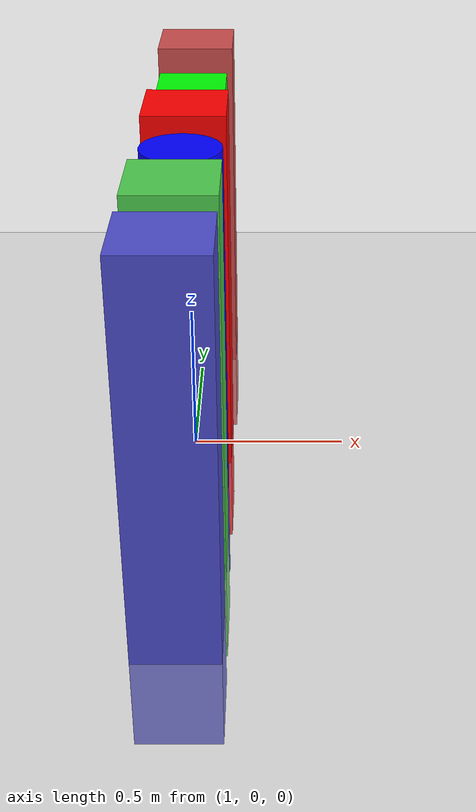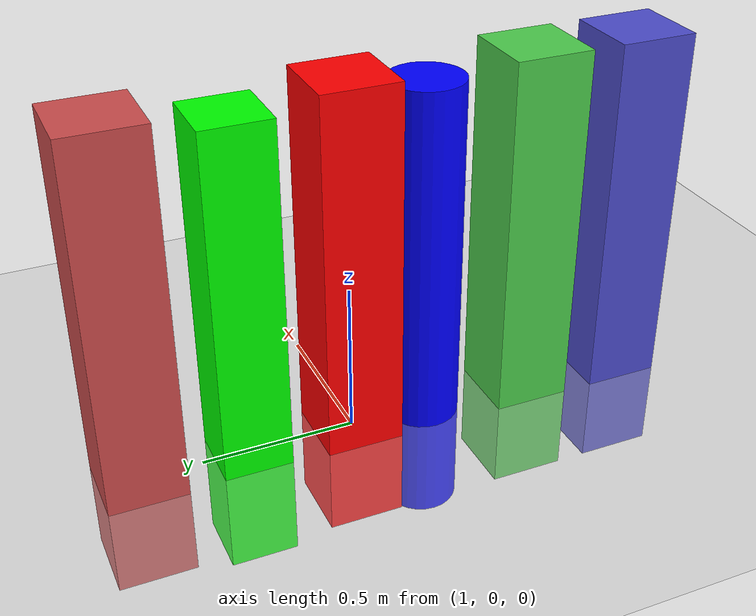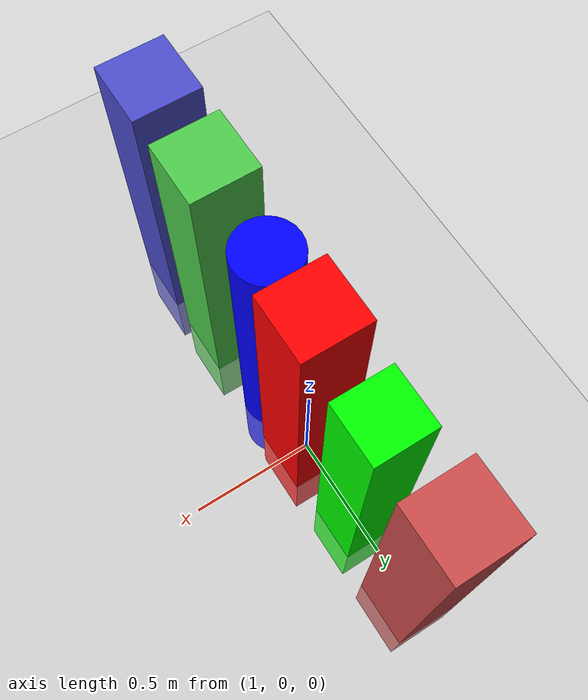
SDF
<?xml version="1.0" ?>
<sdf version="1.9">
  <world name="octomap_demo_world">

    <!-- Physics System -->
    <plugin
      filename="gz-sim-physics-system"
      name="gz::sim::systems::Physics">
    </plugin>

    <!-- User Commands (for GUI interaction) -->
    <plugin
      filename="gz-sim-user-commands-system"
      name="gz::sim::systems::UserCommands">
    </plugin>

    <!-- Scene Broadcaster (publishes scene state) -->
    <plugin
      filename="gz-sim-scene-broadcaster-system"
      name="gz::sim::systems::SceneBroadcaster">
    </plugin>

    <!-- Sensors System -->
    <plugin
      filename="gz-sim-sensors-system"
      name="gz::sim::systems::Sensors">
      <render_engine>ogre2</render_engine>
    </plugin>

    <!-- Gravity - zero for robot arm manipulation -->
    <gravity>0 0 0</gravity>

    <!-- Ground Plane -->
    <model name="ground_plane">
      <static>true</static>
      <link name="link">
        <collision name="collision">
          <geometry>
            <plane>
              <normal>0 0 1</normal>
              <size>10 10</size>
            </plane>
          </geometry>
        </collision>
        <visual name="visual">
          <geometry>
            <plane>
              <normal>0 0 1</normal>
              <size>10 10</size>
            </plane>
          </geometry>
          <material>
            <ambient>0.8 0.8 0.8 1</ambient>
            <diffuse>0.8 0.8 0.8 1</diffuse>
            <specular>0.8 0.8 0.8 1</specular>
          </material>
        </visual>
      </link>
    </model>

    <!-- Obstacle Box 1 (Red) -->
    <!-- Moved closer in front of robot and made taller -->
    <model name="obstacle_box_1">
      <pose>1 0.0 0.45 0 0 0</pose>
      <static>true</static>
      <link name="link">
        <collision name="collision">
          <geometry>
            <box>
              <size>0.25 0.25 1.5</size>
            </box>
          </geometry>
        </collision>
        <visual name="visual">
          <geometry>
            <box>
              <size>0.25 0.25 1.5</size>
            </box>
          </geometry>
          <material>
            <ambient>1 0 0 1</ambient>
            <diffuse>1 0 0 1</diffuse>
            <specular>0.1 0.1 0.1 1</specular>
          </material>
        </visual>
      </link>
    </model>

    <!-- Obstacle Box 2 (Green) -->
    <!-- Kept near Box 1 so both are in camera view at startup, made taller -->
    <model name="obstacle_box_2">
      <pose>1 0.35 0.40 0 0 0</pose>
      <static>true</static>
      <link name="link">
        <collision name="collision">
          <geometry>
            <box>
              <size>0.22 0.22 1.5</size>
            </box>
          </geometry>
        </collision>
        <visual name="visual">
          <geometry>
            <box>
              <size>0.22 0.22 1.5</size>
            </box>
          </geometry>
          <material>
            <ambient>0 1 0 1</ambient>
            <diffuse>0 1 0 1</diffuse>
            <specular>0.1 0.1 0.1 1</specular>
          </material>
        </visual>
      </link>
    </model>

    <!-- Obstacle Cylinder (Blue) -->
    <!-- Moved near the boxes so it is also likely to be in view -->
    <model name="obstacle_cylinder">
      <pose>1 -0.25 0.40 0 0 0</pose>
      <static>true</static>
      <link name="link">
        <collision name="collision">
          <geometry>
            <cylinder>
              <radius>0.12</radius>
              <length>1.5</length>
            </cylinder>
          </geometry>
        </collision>
        <visual name="visual">
          <geometry>
            <cylinder>
              <radius>0.12</radius>
              <length>1.5</length>
            </cylinder>
          </geometry>
          <material>
            <ambient>0 0 1 1</ambient>
            <diffuse>0 0 1 1</diffuse>
            <specular>0.1 0.1 0.1 1</specular>
          </material>
        </visual>
      </link>
    </model>

    <!-- Additional obstacles to form a near-continuous wall in front of the robot -->
    <model name="obstacle_box_3">
      <pose>1 0.70 0.45 0 0 0</pose>
      <static>true</static>
      <link name="link">
        <collision name="collision">
          <geometry>
            <box>
              <size>0.25 0.25 1.5</size>
            </box>
          </geometry>
        </collision>
        <visual name="visual">
          <geometry>
            <box>
              <size>0.25 0.25 1.5</size>
            </box>
          </geometry>
          <material>
            <ambient>0.8 0.3 0.3 1</ambient>
            <diffuse>0.8 0.3 0.3 1</diffuse>
            <specular>0.1 0.1 0.1 1</specular>
          </material>
        </visual>
      </link>
    </model>

    <model name="obstacle_box_4">
      <pose>1 -0.60 0.45 0 0 0</pose>
      <static>true</static>
      <link name="link">
        <collision name="collision">
          <geometry>
            <box>
              <size>0.25 0.25 1.5</size>
            </box>
          </geometry>
        </collision>
        <visual name="visual">
          <geometry>
            <box>
              <size>0.25 0.25 1.5</size>
            </box>
          </geometry>
          <material>
            <ambient>0.3 0.8 0.3 1</ambient>
            <diffuse>0.3 0.8 0.3 1</diffuse>
            <specular>0.1 0.1 0.1 1</specular>
          </material>
        </visual>
      </link>
    </model>

    <model name="obstacle_box_5">
      <pose>1 -0.95 0.45 0 0 0</pose>
      <static>true</static>
      <link name="link">
        <collision name="collision">
          <geometry>
            <box>
              <size>0.25 0.25 1.5</size>
            </box>
          </geometry>
        </collision>
        <visual name="visual">
          <geometry>
            <box>
              <size>0.25 0.25 1.5</size>
            </box>
          </geometry>
          <material>
            <ambient>0.3 0.3 0.8 1</ambient>
            <diffuse>0.3 0.3 0.8 1</diffuse>
            <specular>0.1 0.1 0.1 1</specular>
          </material>
        </visual>
      </link>
    </model>

    <!-- Directional Light (Sun) -->
    <light type="directional" name="sun">
      <cast_shadows>true</cast_shadows>
      <pose>0 0 10 0 0 0</pose>
      <diffuse>0.8 0.8 0.8 1</diffuse>
      <specular>0.2 0.2 0.2 1</specular>
      <attenuation>
        <range>1000</range>
        <constant>0.9</constant>
        <linear>0.01</linear>
        <quadratic>0.001</quadratic>
      </attenuation>
      <direction>-0.5 0.1 -0.9</direction>
    </light>

  </world>
</sdf>
